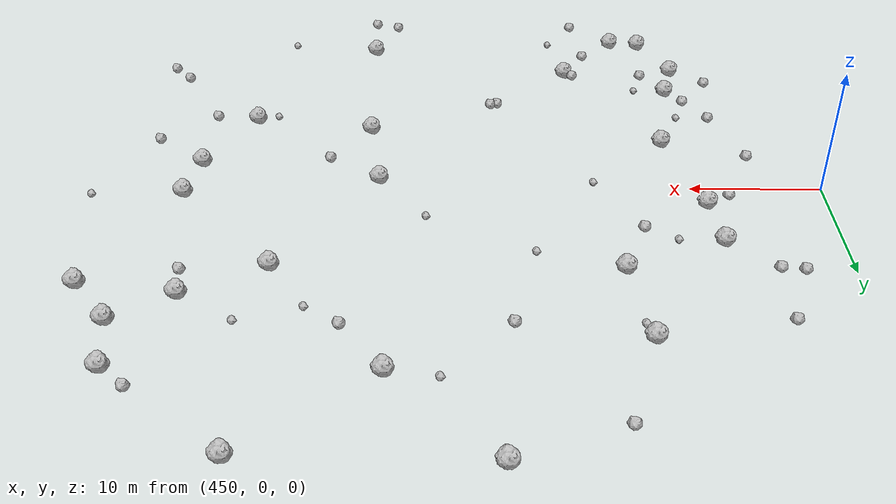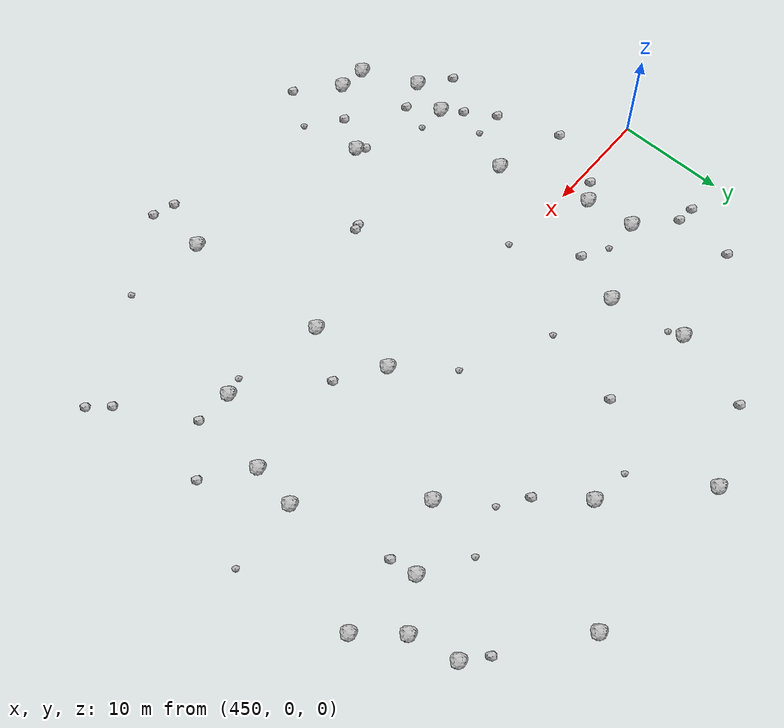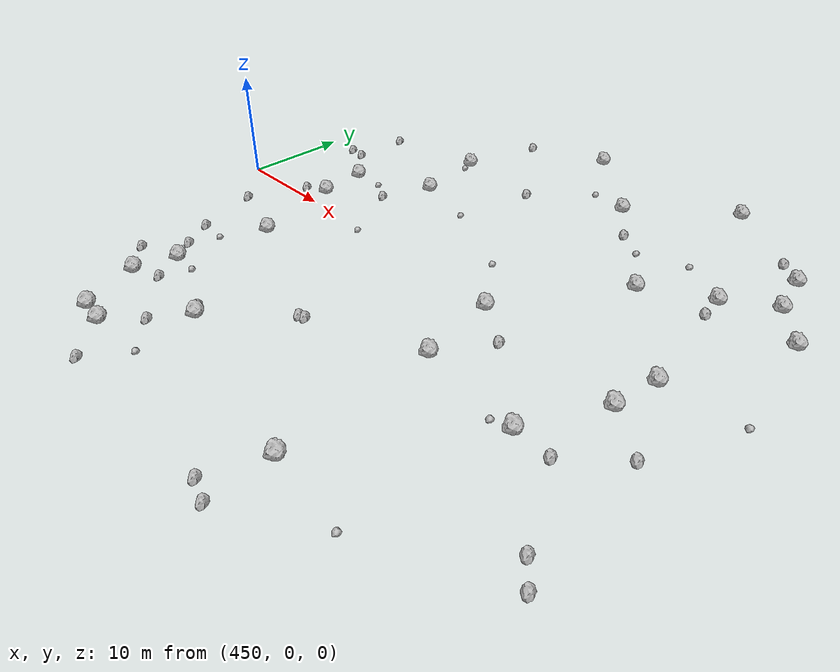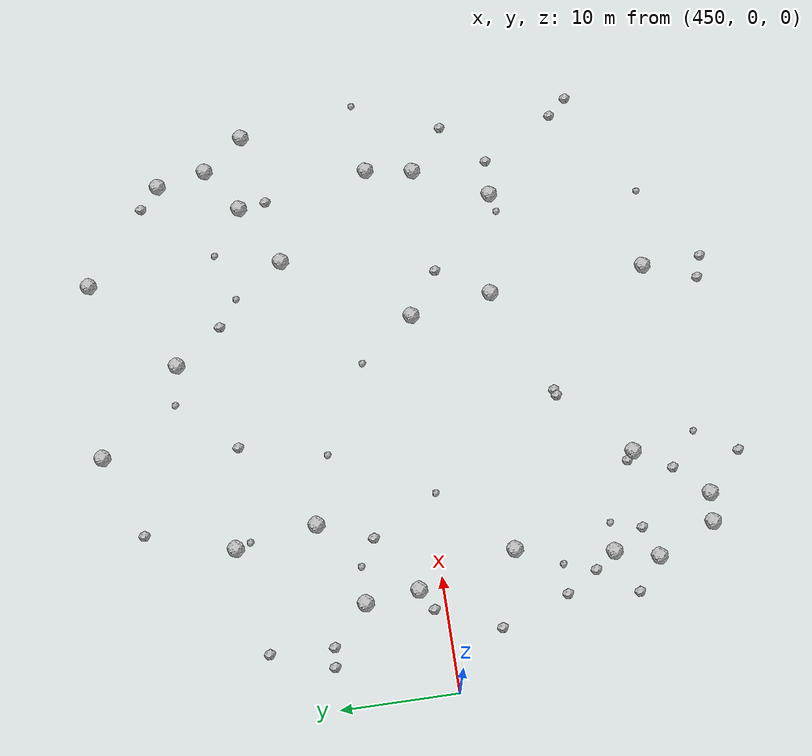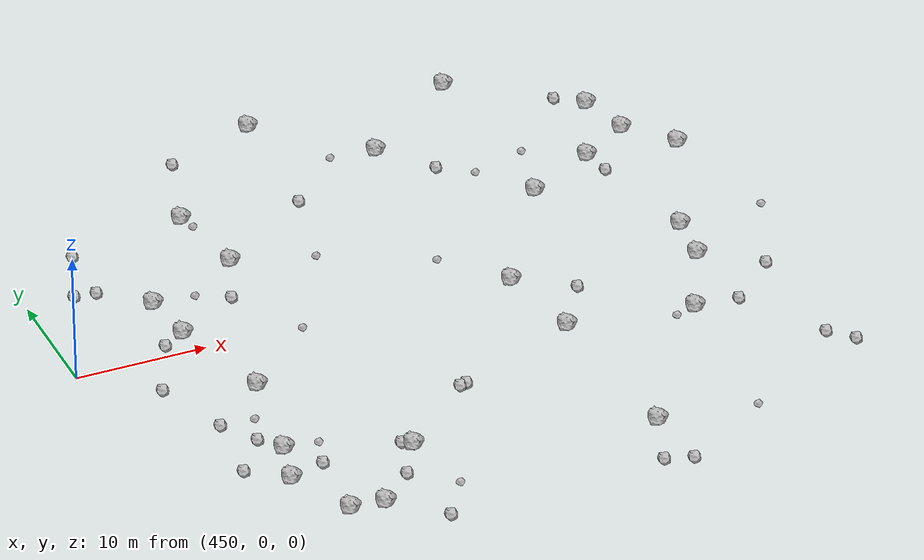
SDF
<sdf version="1.6">
 <world name="default">
  <include><uri>model://sun</uri></include>
  <model name="rock1_12_3">
   <include><uri>model://rock1</uri><pose>460.03368301875935 -14.739415999431365 0.5 0 0 0</pose></include>
  </model>
  <model name="rock1_12_4">
   <include><uri>model://rock1</uri><pose>498.6292791485074 1.2433539391829385 0.5 0 0 0</pose></include>
  </model>
  <model name="rock1_12_5">
   <include><uri>model://rock1</uri><pose>468.58630783263794 -17.93216992102174 0.5 0 0 0</pose></include>
  </model>
  <model name="rock1_12_6">
   <include><uri>model://rock1</uri><pose>461.3981194491744 -23.4988857553494 0.5 0 0 0</pose></include>
  </model>
  <model name="rock1_12_7">
   <include><uri>model://rock1</uri><pose>474.50166935919 27.382764227301074 0.5 0 0 0</pose></include>
  </model>
  <model name="rock1_12_8">
   <include><uri>model://rock1</uri><pose>463.9415560866464 -23.768100704629184 0.5 0 0 0</pose></include>
  </model>
  <model name="rock1_12_9">
   <include><uri>model://rock1</uri><pose>497.98780763624194 -2.9802539871699736 0.5 0 0 0</pose></include>
  </model>
  <model name="rock1_12_10">
   <include><uri>model://rock1</uri><pose>461.4105534710894 -6.4312567166112125 0.5 0 0 0</pose></include>
  </model>
  <model name="rock1_12_11">
   <include><uri>model://rock1</uri><pose>464.82966389124635 16.922316068809153 0.5 0 0 0</pose></include>
  </model>
  <model name="rock1_12_12">
   <include><uri>model://rock1</uri><pose>490.75034944237194 27.216403612950117 0.5 0 0 0</pose></include>
  </model>
  <model name="rock1_12_13">
   <include><uri>model://rock1</uri><pose>459.0781076555945 -18.426893253945508 0.5 0 0 0</pose></include>
  </model>
  <model name="rock1_12_14">
   <include><uri>model://rock1</uri><pose>465.950719098437 9.912532785505626 0.5 0 0 0</pose></include>
  </model>
  <model name="rock1_12_15">
   <include><uri>model://rock1</uri><pose>485.69659964423556 -22.002643608164952 0.5 0 0 0</pose></include>
  </model>
  <model name="rock1_12_16">
   <include><uri>model://rock1</uri><pose>494.65736827947285 -9.549911124851487 0.5 0 0 0</pose></include>
  </model>
  <model name="rock1_12_17">
   <include><uri>model://rock1</uri><pose>458.58297663174244 6.688015117633881 0.5 0 0 0</pose></include>
  </model>
  <model name="rock1_12_18">
   <include><uri>model://rock1</uri><pose>500.6235461039972 15.798801928406462 0.5 0 0 0</pose></include>
  </model>
  <model name="rock1_12_19">
   <include><uri>model://rock1</uri><pose>482.0698347195002 20.208466290931035 0.5 0 0 0</pose></include>
  </model>
  <model name="rock1_12_20">
   <include><uri>model://rock1</uri><pose>503.6176976970257 12.134682783403584 0.5 0 0 0</pose></include>
  </model>
  <model name="rock1_12_21">
   <include><uri>model://rock1</uri><pose>485.02227405514054 -8.103138799594937 0.5 0 0 0</pose></include>
  </model>
  <model name="rock1_12_22">
   <include><uri>model://rock1</uri><pose>499.6959128162222 20.188981308613855 0.5 0 0 0</pose></include>
  </model>
  <model name="rock1_12_23">
   <include><uri>model://rock1</uri><pose>490.71899012191216 9.998122523609553 0.5 0 0 0</pose></include>
  </model>
  <model name="rock1_12_24">
   <include><uri>model://rock1</uri><pose>459.0873416515668 2.099561281134605 0.5 0 0 0</pose></include>
  </model>
  <model name="rock1_12_25">
   <include><uri>model://rock1</uri><pose>496.46714353287183 13.102100981731951 0.5 0 0 0</pose></include>
  </model>
  <model name="rock1_12_26">
   <include><uri>model://rock1</uri><pose>483.85736189467184 -0.8236751038726062 0.5 0 0 0</pose></include>
  </model>
  <model name="rock2_12_0">
   <include><uri>model://rock2</uri><pose>473.8019768745284 15.70971230301619 0.3 0 0 0</pose></include>
  </model>
  <model name="rock2_12_1">
   <include><uri>model://rock2</uri><pose>456.9752033036396 -10.227452344571951 0.3 0 0 0</pose></include>
  </model>
  <model name="rock2_12_2">
   <include><uri>model://rock2</uri><pose>458.6908010767209 -12.95817942194492 0.3 0 0 0</pose></include>
  </model>
  <model name="rock2_12_3">
   <include><uri>model://rock2</uri><pose>502.0482405280393 -6.118610890989707 0.3 0 0 0</pose></include>
  </model>
  <model name="rock2_12_4">
   <include><uri>model://rock2</uri><pose>485.95318093695266 -27.31833995292033 0.3 0 0 0</pose></include>
  </model>
  <model name="rock2_12_5">
   <include><uri>model://rock2</uri><pose>464.1076350050123 5.234875235041891 0.3 0 0 0</pose></include>
  </model>
  <model name="rock2_12_6">
   <include><uri>model://rock2</uri><pose>453.5885861301371 9.925793757118825 0.3 0 0 0</pose></include>
  </model>
  <model name="rock2_12_7">
   <include><uri>model://rock2</uri><pose>467.0686767831356 24.48509786610626 0.3 0 0 0</pose></include>
  </model>
  <model name="rock2_12_8">
   <include><uri>model://rock2</uri><pose>501.8459876448037 -16.341837374177658 0.3 0 0 0</pose></include>
  </model>
  <model name="rock2_12_9">
   <include><uri>model://rock2</uri><pose>454.91017484750734 -4.344978662434315 0.3 0 0 0</pose></include>
  </model>
  <model name="rock2_12_10">
   <include><uri>model://rock2</uri><pose>485.2022485656072 16.07856639370486 0.3 0 0 0</pose></include>
  </model>
  <model name="rock2_12_11">
   <include><uri>model://rock2</uri><pose>457.2567518531175 1.052850759504775 0.3 0 0 0</pose></include>
  </model>
  <model name="rock2_12_12">
   <include><uri>model://rock2</uri><pose>497.6721299901447 21.912249724299272 0.3 0 0 0</pose></include>
  </model>
  <model name="rock2_12_13">
   <include><uri>model://rock2</uri><pose>496.81067985377143 10.657999853427654 0.3 0 0 0</pose></include>
  </model>
  <model name="rock2_12_14">
   <include><uri>model://rock2</uri><pose>474.6161739059263 -12.306310066968976 0.3 0 0 0</pose></include>
  </model>
  <model name="rock2_12_15">
   <include><uri>model://rock2</uri><pose>487.8904947050534 -3.570406006918379 0.3 0 0 0</pose></include>
  </model>
  <model name="rock2_12_16">
   <include><uri>model://rock2</uri><pose>483.9134667166985 -26.668154999099876 0.3 0 0 0</pose></include>
  </model>
  <model name="rock2_12_17">
   <include><uri>model://rock2</uri><pose>461.79618620415215 -17.485949598094084 0.3 0 0 0</pose></include>
  </model>
  <model name="rock2_12_18">
   <include><uri>model://rock2</uri><pose>456.2964050161841 -16.257743755847294 0.3 0 0 0</pose></include>
  </model>
  <model name="rock2_12_19">
   <include><uri>model://rock2</uri><pose>467.8671821843447 -17.341379449547297 0.3 0 0 0</pose></include>
  </model>
  <model name="rock2_12_20">
   <include><uri>model://rock2</uri><pose>475.1616694276716 -12.158640431282585 0.3 0 0 0</pose></include>
  </model>
  <model name="rock2_12_21">
   <include><uri>model://rock2</uri><pose>503.4171812687768 -18.06494556640888 0.3 0 0 0</pose></include>
  </model>
  <model name="rock2_12_22">
   <include><uri>model://rock2</uri><pose>498.0388015451253 -9.771313900139244 0.3 0 0 0</pose></include>
  </model>
  <model name="rock2_12_23">
   <include><uri>model://rock2</uri><pose>467.42313027977485 -26.97835064566505 0.3 0 0 0</pose></include>
  </model>
  <model name="rock2_12_24">
   <include><uri>model://rock2</uri><pose>466.66910395346383 -21.075019147959694 0.3 0 0 0</pose></include>
  </model>
  <model name="rock2_12_25">
   <include><uri>model://rock2</uri><pose>455.26009535999526 9.744046300332826 0.3 0 0 0</pose></include>
  </model>
  <model name="rock2_12_26">
   <include><uri>model://rock2</uri><pose>455.4376305175223 15.148003478606675 0.3 0 0 0</pose></include>
  </model>
  <model name="rock3_12_0">
   <include><uri>model://rock3</uri><pose>461.7859835906557 6.584099432434527 0.2 0 0 0</pose></include>
  </model>
  <model name="rock3_12_1">
   <include><uri>model://rock3</uri><pose>492.9334280364068 -9.985620514436121 0.2 0 0 0</pose></include>
  </model>
  <model name="rock3_12_2">
   <include><uri>model://rock3</uri><pose>469.68649889438854 -23.519683977835857 0.2 0 0 0</pose></include>
  </model>
  <model name="rock3_12_3">
   <include><uri>model://rock3</uri><pose>478.46098973572316 20.695006895320503 0.2 0 0 0</pose></include>
  </model>
  <model name="rock3_12_4">
   <include><uri>model://rock3</uri><pose>467.31728849516895 -0.5837985792168894 0.2 0 0 0</pose></include>
  </model>
  <model name="rock3_12_5">
   <include><uri>model://rock3</uri><pose>459.5661615497661 -10.343394936970366 0.2 0 0 0</pose></include>
  </model>
  <model name="rock3_12_6">
   <include><uri>model://rock3</uri><pose>493.12752055118887 -22.93921607804588 0.2 0 0 0</pose></include>
  </model>
  <model name="rock3_12_7">
   <include><uri>model://rock3</uri><pose>465.22734500002457 15.618154635815458 0.2 0 0 0</pose></include>
  </model>
  <model name="rock3_12_8">
   <include><uri>model://rock3</uri><pose>492.1683834500487 15.771646343911243 0.2 0 0 0</pose></include>
  </model>
  <model name="rock3_12_9">
   <include><uri>model://rock3</uri><pose>487.69596738616235 14.32767005719434 0.2 0 0 0</pose></include>
  </model>
  <model name="rock3_12_10">
   <include><uri>model://rock3</uri><pose>472.0369505636951 8.134994006583362 0.2 0 0 0</pose></include>
  </model>
  <model name="rock3_12_11">
   <include><uri>model://rock3</uri><pose>505.47129099032605 1.5852760667540622 0.2 0 0 0</pose></include>
  </model>
  <model name="rock3_12_12">
   <include><uri>model://rock3</uri><pose>462.58061087939626 -14.889654129753875 0.2 0 0 0</pose></include>
  </model>
  <model name="rock3_12_13">
   <include><uri>model://rock3</uri><pose>480.01070759139975 4.035174059121637 0.2 0 0 0</pose></include>
  </model>
 </world>
</sdf>
